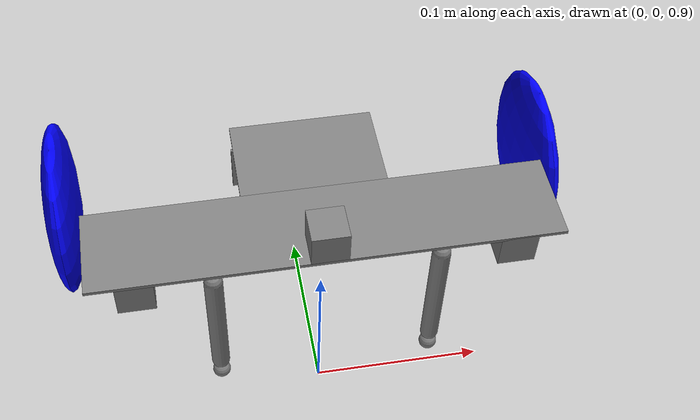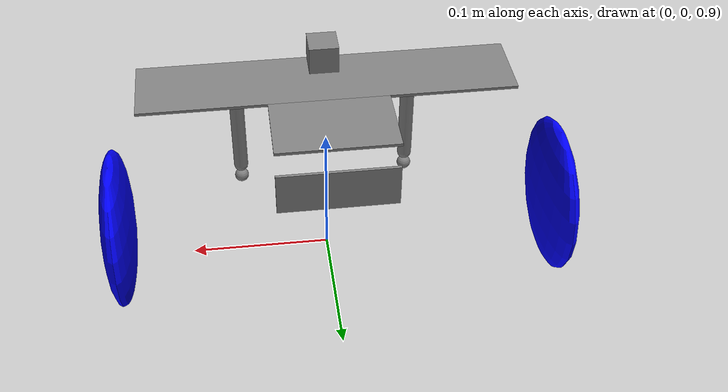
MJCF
<?xml version="1.0" ?>
<mujoco>
    <asset>
        <texture builtin="gradient" height="100" rgb1="1 1 1" rgb2="0 0 0" type="skybox" width="100"/>
        <texture builtin="flat" height="1278" mark="cross" markrgb="1 1 1" name="texgeom" random="0.01" rgb1="0.8 0.6 0.4" rgb2="0.8 0.6 0.4" type="cube" width="127"/>
        <texture builtin="checker" height="100" name="texplane" rgb1="0 0 0" rgb2="0.8 0.8 0.8" type="2d" width="100"/>
        <material name="MatPlane" reflectance="0.5" shininess="1" specular="1" texrepeat="60 60" texture="texplane"/>
        <material name="geom" texture="texgeom" texuniform="true"/>
    </asset>
    <option timestep="0.00001" />

    <worldbody>
        <light cutoff="100" diffuse="1 1 1" dir="-0 0 -1.3" directional="true" exponent="1" pos="0 0 1.3" specular=".1 .1 .1"/>
        <geom conaffinity="1" condim="3" material="MatPlane" name="floor" pos="0 0 0" rgba="0.8 0.9 0.8 1" size="5 5 0.1" type="plane"/>
        <body pos="0 0 1">
            <joint type="free"/>
            <geom type="box" pos="0 0 0.05" size="0.125 0.025 0.001" />

            <body name="joint_fc_1">
                <geom type="box" pos="0 -0.015 0.06" size="0.01 0.01 0.01"/>
            </body>
            <body name="joint_fr_1">
                <geom type="box" pos="0.1 -0.015 0.04" size="0.01 0.01 0.01"/>
            </body>
            <body name="joint_fl_1">
                <geom type="box" pos="-0.1 -0.015 0.04" size="0.01 0.01 0.01"/>
            </body>

            <body pos="0.06 -0.02 0 ">
                <joint name="support_fr_1" type="hinge" axis="1 0 0" pos="0 0 0.04" limited="true" range="-90 0"/>
                <geom type="capsule" size="0.005" fromto="0 0 0.04 0 0 -0.035" />
                <body>
                    <joint pos="0 0 -0.045" type="ball"/>
                    <geom type="sphere" size="0.005" pos="0 0 -0.045"/>
                </body>
            </body>
            <body pos="-0.06 -0.02 0 ">
                <joint name="support_fl_1" type="hinge" axis="1 0 0" pos="0 0 0.04" limited="true" range="-90 0"/>
                <geom type="capsule" size="0.005" fromto="0 0 0.04 0 0 -0.035" />
                <body>
                    <joint pos="0 0 -0.045" type="ball"/>
                    <geom type="sphere" size="0.005" pos="0 0 -0.045"/>
                </body>
            </body>

            <geom type="box" pos="0 0.05 0.05" size="0.04 0.025 0.001"/>
            <geom type="box" pos="0 0.075 0.0175" size="0.04 0.001 0.015"/>
            <body>
                <joint name="RW1" type="hinge" axis="1 0 0" pos="-0.14 0.075 0"/>
                <geom type="ellipsoid" size="0.01 0.05 0.05" rgba="0 0 1 1" pos="0.14 0.075 0"/>
            </body>
            <body>
                <joint name ="LW1" type="hinge" axis="1 0 0" pos="0.14 0.075 0"/>
                <geom type="ellipsoid" size="0.01 0.05 0.05" rgba="0 0 1 1" pos="-0.14 0.075 0"/>
            </body>
        </body>
    </worldbody>
    <actuator>
        <motor joint="LW1"/>
        <motor joint="RW1"/>
        <position joint="support_fr_1"/>
        <position joint="support_fl_1"/>
    </actuator>
</mujoco>
